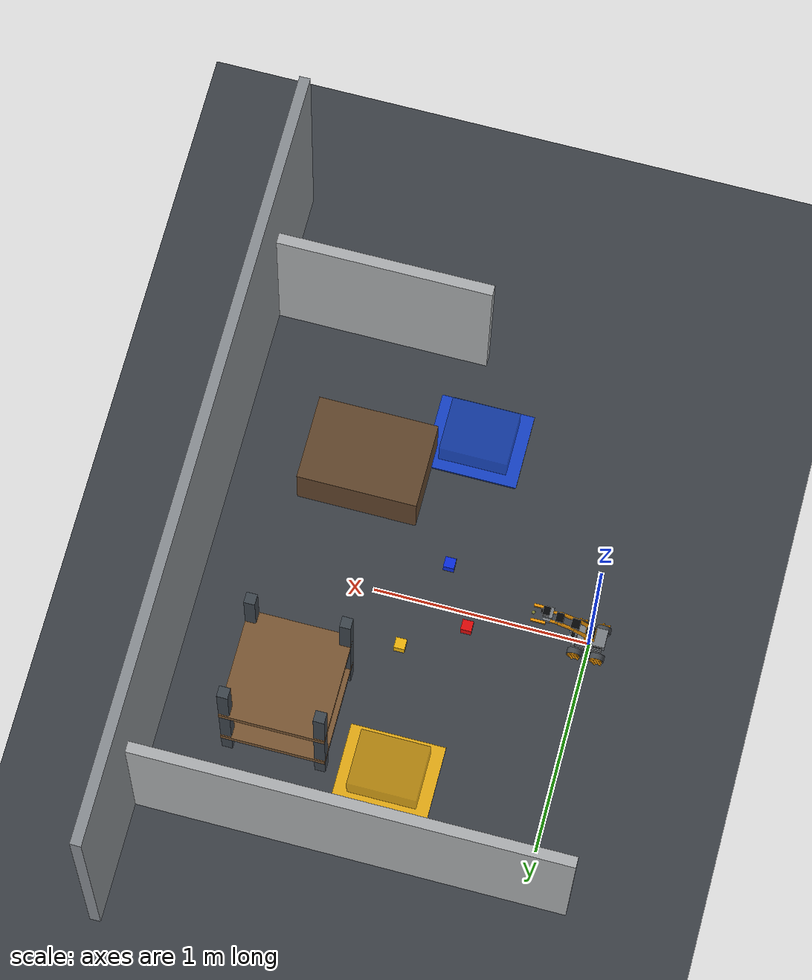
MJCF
<mujoco model="ugrp_masterpi_sim">
  <compiler angle="radian"/>
  <option timestep="0.01" gravity="0 0 -9.81" integrator="RK4"/>
  <visual><global offwidth="640" offheight="480"/><map znear=".002"/></visual>
  <asset>
    <texture type="skybox" builtin="gradient" rgb1=".08 .09 .11" rgb2=".20 .22 .26" width="512" height="3072"/>
    <texture name="ground" type="2d" builtin="checker" width="256" height="256" rgb1=".20 .22 .24" rgb2=".27 .29 .31"/>
    <material name="groundmat" texture="ground" texrepeat="14 14" reflectance=".035"/>
    <material name="aluminum" rgba=".48 .50 .52 1"/>
    <material name="dark" rgba=".055 .060 .068 1"/>
    <material name="black" rgba=".018 .020 .024 1"/>
    <material name="orange" rgba=".95 .60 .03 1"/>
    <material name="hub" rgba=".28 .30 .32 1"/>
    <material name="redmat" rgba=".88 .04 .04 1"/>
    <material name="blumat" rgba=".04 .18 .88 1"/>
    <material name="yellowmat" rgba=".95 .72 .05 1"/>
  </asset>
  <worldbody>
    <light pos="0 -1.3 2.4" dir="0 .25 -1" diffuse="1 1 1" ambient=".34 .34 .34" specular=".22 .22 .22"/>
    <light pos="-1 1.7 1.7" dir=".3 -.4 -1" diffuse=".70 .70 .70" ambient=".22 .22 .22" specular=".12 .12 .12"/>
    <light pos="1.4 -.2 2.0" dir="-.55 .05 -1" diffuse=".58 .58 .58" ambient=".18 .18 .18" specular=".08 .08 .08"/>
    <geom name="floor" type="plane" size="3 3 .1" material="groundmat"/>

    <!-- Compact indoor logistics scene: open work cell, shelving and two delivery zones. -->
    <geom name="wall_back" type="box" pos="1.8 0 .65" size=".025 1.8 .65" rgba=".54 .56 .58 1"/>
    <geom name="wall_left" type="box" pos=".80 1.22 .42" size="1.00 .025 .42" rgba=".68 .69 .70 1" contype="0" conaffinity="0"/>
    <geom name="wall_right_short" type="box" pos="1.28 -1.22 .42" size=".50 .025 .42" rgba=".68 .69 .70 1" contype="0" conaffinity="0"/>

    <!-- Factory shelf / storage rack on the far-left side. -->
    <geom name="rack_post_a" type="box" pos="1.45 .86 .38" size=".025 .025 .38" rgba=".24 .27 .30 1" contype="0" conaffinity="0"/>
    <geom name="rack_post_b" type="box" pos="1.45 .42 .38" size=".025 .025 .38" rgba=".24 .27 .30 1" contype="0" conaffinity="0"/>
    <geom name="rack_post_c" type="box" pos="1.02 .86 .38" size=".025 .025 .38" rgba=".24 .27 .30 1" contype="0" conaffinity="0"/>
    <geom name="rack_post_d" type="box" pos="1.02 .42 .38" size=".025 .025 .38" rgba=".24 .27 .30 1" contype="0" conaffinity="0"/>
    <geom name="rack_shelf_low" type="box" pos="1.235 .64 .16" size=".24 .25 .018" rgba=".48 .34 .20 1" contype="0" conaffinity="0"/>
    <geom name="rack_shelf_high" type="box" pos="1.235 .64 .48" size=".24 .25 .018" rgba=".48 .34 .20 1" contype="0" conaffinity="0"/>

    <!-- Workbench and delivery pads make transport goals spatially meaningful. -->
    <geom name="workbench" type="box" pos="1.18 -.55 .13" size=".28 .20 .13" rgba=".38 .27 .17 1" contype="0" conaffinity="0"/>
    <geom name="delivery_blue" type="box" pos=".72 -.82 .006" size=".22 .18 .006" rgba=".08 .26 .78 .9" contype="0" conaffinity="0"/>
    <geom name="delivery_yellow" type="box" pos=".72 .82 .006" size=".22 .18 .006" rgba=".90 .67 .08 .9" contype="0" conaffinity="0"/>
    <geom name="crate_blue" type="box" pos=".72 -.82 .075" size=".16 .13 .07" rgba=".10 .22 .48 .45" contype="0" conaffinity="0"/>
    <geom name="crate_yellow" type="box" pos=".72 .82 .075" size=".16 .13 .07" rgba=".50 .38 .08 .45" contype="0" conaffinity="0"/>

    <!-- MasterPi: ~185 x 162 x 343 mm overall, four mecanum wheels, compact metal chassis. -->
    <body name="robot" pos="0 0 .040" mocap="true">
      <geom name="base_lower" type="box" pos="0 0 .018" size=".064 .054 .022" material="dark" mass="1.1" contype="0" conaffinity="0"/>
      <geom name="base_top" type="box" pos="-.004 0 .052" size=".059 .048 .010" material="aluminum" contype="0" conaffinity="0"/>
      <geom name="front_plate" type="box" pos=".068 0 .021" size=".006 .048 .022" material="aluminum" contype="0" conaffinity="0"/>
      <geom name="rear_cage" type="box" pos="-.044 0 .078" size=".031 .043 .018" material="aluminum" contype="0" conaffinity="0"/>
      <geom name="pi_board" type="box" pos="-.040 0 .066" size=".032 .038 .006" rgba=".07 .26 .12 1" contype="0" conaffinity="0"/>
      <geom type="box" pos="-.044 0 .079" size=".022 .044 .014" material="dark" contype="0" conaffinity="0"/>

      <!-- front ultrasonic sensor pair -->
      <geom type="box" pos=".076 0 .050" size=".009 .032 .015" material="black" contype="0" conaffinity="0"/>
      <geom type="cylinder" pos=".086 .017 .050" size=".010 .006" euler="0 1.5708 0" rgba=".72 .76 .80 1" contype="0" conaffinity="0"/>
      <geom type="cylinder" pos=".086 -.017 .050" size=".010 .006" euler="0 1.5708 0" rgba=".72 .76 .80 1" contype="0" conaffinity="0"/>
      <geom type="cylinder" pos=".092 .017 .050" size=".006 .007" euler="0 1.5708 0" rgba=".28 .63 .95 1" contype="0" conaffinity="0"/>
      <geom type="cylinder" pos=".092 -.017 .050" size=".006 .007" euler="0 1.5708 0" rgba=".28 .63 .95 1" contype="0" conaffinity="0"/>

      <!-- four mecanum wheels -->
      <geom name="wheel_fl" type="cylinder" pos=".052 .067 0" size=".034 .014" euler="1.5708 0 0" material="hub" contype="0" conaffinity="0"/>
      <geom name="wheel_fr" type="cylinder" pos=".052 -.067 0" size=".034 .014" euler="1.5708 0 0" material="hub" contype="0" conaffinity="0"/>
      <geom name="wheel_rl" type="cylinder" pos="-.052 .067 0" size=".034 .014" euler="1.5708 0 0" material="hub" contype="0" conaffinity="0"/>
      <geom name="wheel_rr" type="cylinder" pos="-.052 -.067 0" size=".034 .014" euler="1.5708 0 0" material="hub" contype="0" conaffinity="0"/>
      <geom type="cylinder" pos=".052 .082 0" size=".029 .004" euler="1.5708 0 0" material="orange" contype="0" conaffinity="0"/>
      <geom type="cylinder" pos=".052 -.082 0" size=".029 .004" euler="1.5708 0 0" material="orange" contype="0" conaffinity="0"/>
      <geom type="cylinder" pos="-.052 .082 0" size=".029 .004" euler="1.5708 0 0" material="orange" contype="0" conaffinity="0"/>
      <geom type="cylinder" pos="-.052 -.082 0" size=".029 .004" euler="1.5708 0 0" material="orange" contype="0" conaffinity="0"/>
      <geom type="capsule" fromto=".031 .087 -.022 .047 .087 .027" size=".005" material="orange" contype="0" conaffinity="0"/>
      <geom type="capsule" fromto=".057 .087 -.027 .073 .087 .022" size=".005" material="orange" contype="0" conaffinity="0"/>
      <geom type="capsule" fromto=".031 -.087 .022 .047 -.087 -.027" size=".005" material="orange" contype="0" conaffinity="0"/>
      <geom type="capsule" fromto=".057 -.087 .027 .073 -.087 -.022" size=".005" material="orange" contype="0" conaffinity="0"/>
      <geom type="capsule" fromto="-.073 .087 -.022 -.057 .087 .027" size=".005" material="orange" contype="0" conaffinity="0"/>
      <geom type="capsule" fromto="-.047 .087 -.027 -.031 .087 .022" size=".005" material="orange" contype="0" conaffinity="0"/>
      <geom type="capsule" fromto="-.073 -.087 .022 -.057 -.087 -.027" size=".005" material="orange" contype="0" conaffinity="0"/>
      <geom type="capsule" fromto="-.047 -.087 .027 -.031 -.087 -.022" size=".005" material="orange" contype="0" conaffinity="0"/>

      <!-- Actual MasterPi topology: 4 arm DOF (yaw + shoulder + elbow + wrist pitch) + gripper. -->
      <body name="arm_base" pos="0 0 .064">
        <joint name="arm_yaw" type="hinge" axis="0 0 1" range="-1.55 1.55" damping="2"/>
        <geom type="cylinder" size=".026 .012" pos="0 0 .010" material="black" contype="0" conaffinity="0"/>
        <geom type="box" size=".024 .026 .025" pos="0 0 .037" material="orange" contype="0" conaffinity="0"/>
        <body name="shoulder_link" pos="0 0 .062">
          <joint name="shoulder" type="hinge" axis="0 1 0" range="-1.45 1.35" damping="3"/>
          <geom type="box" size=".021 .024 .021" material="black" contype="0" conaffinity="0"/>
          <geom type="capsule" fromto="0 .025 0 .072 .025 .060" size=".008" material="orange" mass=".10" contype="0" conaffinity="0"/>
          <geom type="capsule" fromto="0 -.025 0 .072 -.025 .060" size=".008" material="orange" contype="0" conaffinity="0"/>
          <body name="elbow_link" pos=".072 0 .060">
            <joint name="elbow" type="hinge" axis="0 1 0" range="-1.65 1.45" damping="3"/>
            <geom type="box" size=".020 .023 .020" material="black" contype="0" conaffinity="0"/>
            <geom type="capsule" fromto="0 .024 0 .075 .024 .035" size=".0075" material="orange" mass=".08" contype="0" conaffinity="0"/>
            <geom type="capsule" fromto="0 -.024 0 .075 -.024 .035" size=".0075" material="orange" contype="0" conaffinity="0"/>
            <body name="wrist_link" pos=".075 0 .035">
              <joint name="wrist_pitch" type="hinge" axis="0 1 0" range="-1.65 1.65" damping="2"/>
              <geom type="box" size=".018 .022 .018" material="black" contype="0" conaffinity="0"/>
              <geom type="capsule" fromto="0 .022 0 .045 .022 -.002" size=".0065" material="orange" mass=".05" contype="0" conaffinity="0"/>
              <geom type="capsule" fromto="0 -.022 0 .045 -.022 -.002" size=".0065" material="orange" contype="0" conaffinity="0"/>
              <body name="gripper" pos=".045 0 -.002">
                <!-- MasterPi HD wide-angle camera is mounted ABOVE the gripper, not behind/in the fingers. -->
                <geom name="camera_bracket" type="box" pos=".006 0 .048" size=".019 .026 .006" material="aluminum" contype="0" conaffinity="0"/>
                <geom name="camera_body" type="box" pos=".018 0 .054" size=".016 .021 .014" material="black" contype="0" conaffinity="0"/>
                <geom name="camera_lens" type="cylinder" pos=".036 0 .054" size=".010 .008" euler="0 1.5708 0" rgba=".025 .025 .030 1" contype="0" conaffinity="0"/>
                <!-- Lens optical center sits above the jaws; 10 deg downward pitch keeps the floor target visible without showing the claw. -->
                <camera name="robot_cam" pos=".044 0 .054" xyaxes="0 -1 0 .173648 0 .984808" fovy="62"/>
                <geom type="box" pos=".012 .022 0" size=".018 .006 .012" material="aluminum" contype="0" conaffinity="0"/>
                <geom type="box" pos=".012 -.022 0" size=".018 .006 .012" material="aluminum" contype="0" conaffinity="0"/>
                <geom name="left_finger" type="box" pos=".047 .035 -.004" size=".034 .006 .006" material="orange" contype="0" conaffinity="0"/>
                <body name="right_jaw" pos="0 -.035 0">
                  <joint name="gripper_open" type="slide" axis="0 1 0" range="0 .012" damping="1"/>
                  <geom name="right_finger" type="box" pos=".047 0 -.004" size=".034 .006 .006" material="orange" contype="0" conaffinity="0"/>
                </body>
                <site name="grip_site" pos=".075 0 -.004" size=".008" rgba="1 1 .2 .45"/>
              </body>
            </body>
          </body>
        </body>
      </body>
    </body>

    <!-- 50 mm cubes, directly on the same z=0 floor; no table. -->
    <body name="red_block" pos=".55 .07 .025">
      <freejoint name="red_free"/>
      <geom name="red_block_geom" type="box" size=".025 .025 .025" material="redmat" mass=".05" friction="1 .01 .001"/>
    </body>
    <body name="blue_block" pos=".70 -.20 .025">
      <freejoint name="blue_free"/>
      <geom name="blue_block_geom" type="box" size=".025 .025 .025" material="blumat" mass=".05" friction="1 .01 .001"/>
    </body>
    <body name="yellow_block" pos=".82 .23 .025">
      <freejoint name="yellow_free"/>
      <geom name="yellow_block_geom" type="box" size=".025 .025 .025" material="yellowmat" mass=".05" friction="1 .01 .001"/>
    </body>
    <!-- Lab observer cameras. All are INSIDE the walls and converge on the robot/block work corridor. -->
    <camera name="cctv_front_left" pos="-.45 -.95 .78" xyaxes=".653620 -.756823 0 .320718 .276984 .905771" fovy="50"/>
    <camera name="cctv_front_right" pos="1.48 -.92 .80" xyaxes=".742491 .669856 0 -.329484 .365212 .870667" fovy="50"/>
    <camera name="cctv_rear_left" pos="-.38 .98 .82" xyaxes="-.689304 -.724472 0 .327313 -.311424 .892122" fovy="50"/>
    <camera name="cctv_top" pos=".65 0 1.80" xyaxes="1 0 0 0 1 0" fovy="46"/>
  </worldbody>
</mujoco>
